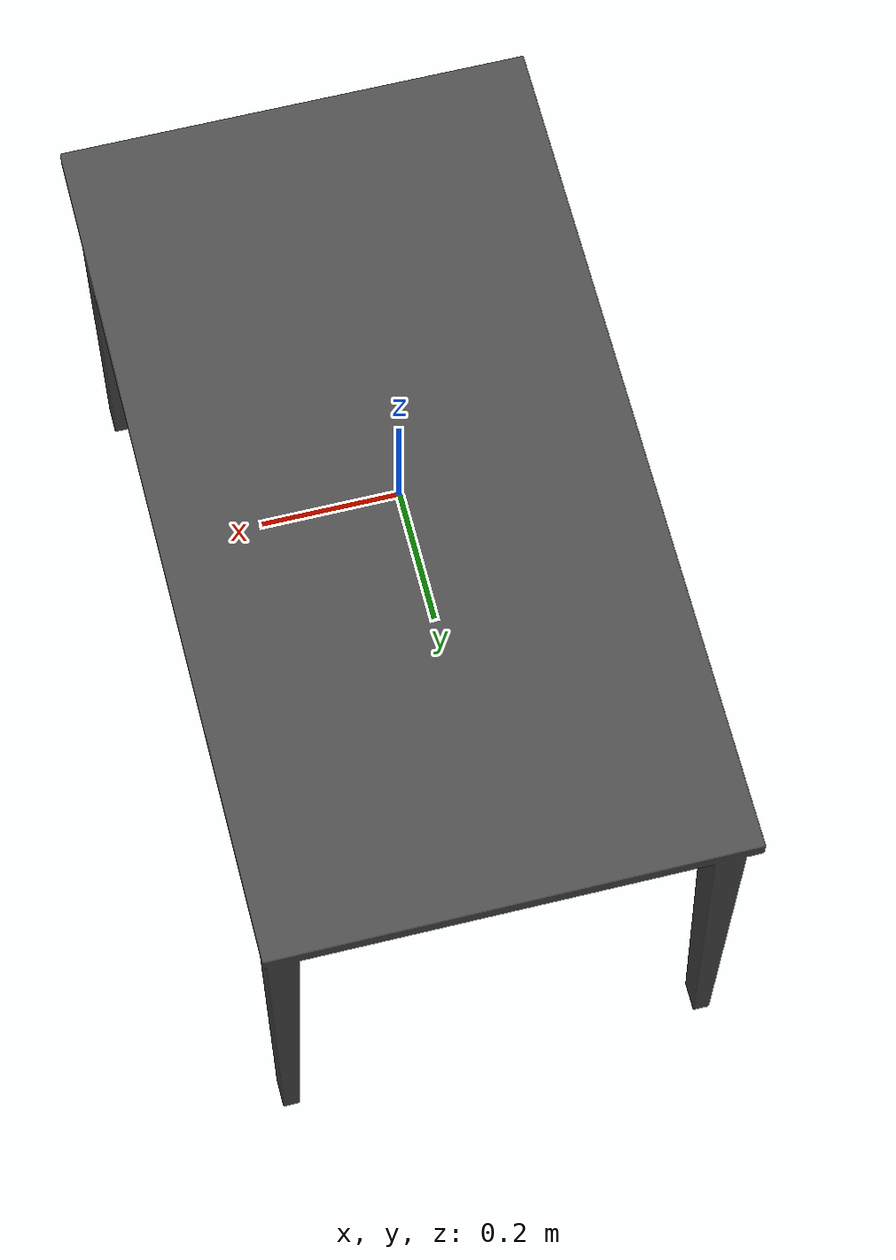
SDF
<?xml version='1.0' ?>
<sdf version='1.6'>
  <model name='office_desk'>
    <static>false</static>
    <link name='link'>
      <collision name='collision'>
        <geometry>
          <mesh>
            <uri>model://volta_simulation/models/office_desk/meshes/office_desk.dae</uri>
          </mesh>
        </geometry>
        <surface>
          <friction>
            <ode>
              <mu>100</mu>
              <mu2>50</mu2>
            </ode>
          </friction>
        </surface>
      </collision>
      <visual name='visual'>
        <geometry>
          <mesh>
            <uri>model://volta_simulation/models/office_desk/meshes/office_desk.dae</uri>
          </mesh>
        </geometry>
        <material>
          <script>
            <uri>model://volta_simulation/models/office_desk/materials/scripts</uri>
            <uri>model://volta_simulation/models/office_desk/materials/textures</uri>
            <name>office_desk</name>
          </script>
        </material>
      </visual>
      <inertial>
        <pose>-0.07253453 0 -0.08027199 0 0 0</pose>
        <mass>22.98398488</mass>
        <inertia>
          <ixx>4.62860462</ixx>
          <iyy>2.20565431</iyy>
          <izz>5.46223361</izz>
          <ixy>0.00000331</ixy>
          <ixz>0.31226378</ixz>
          <iyz>0.00000266</iyz>
        </inertia>
      </inertial>
    </link>
  </model>
</sdf>
